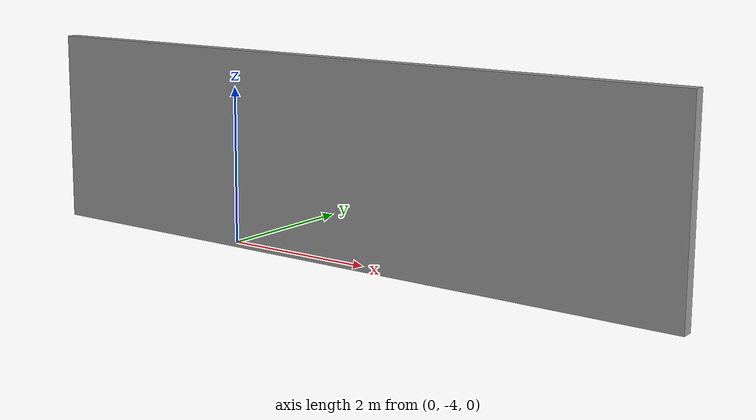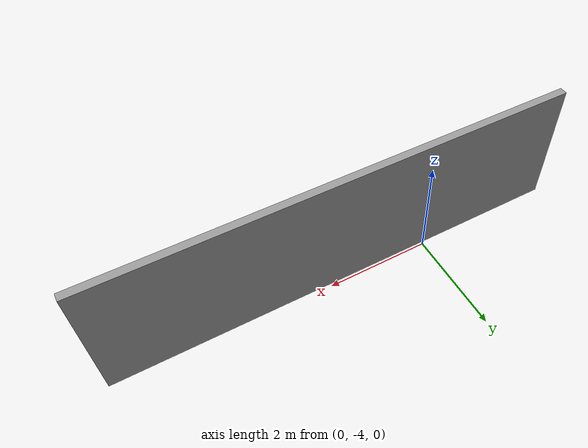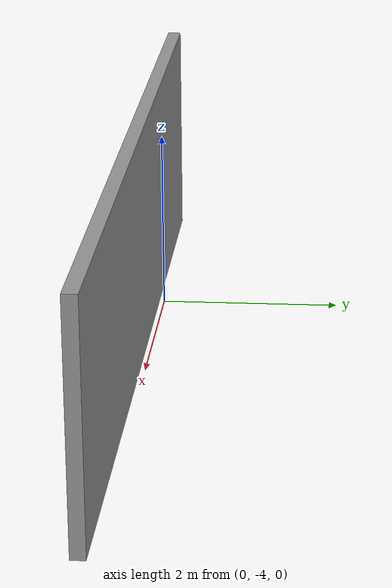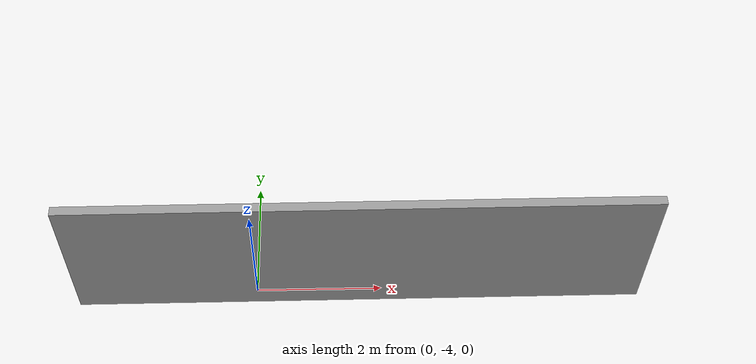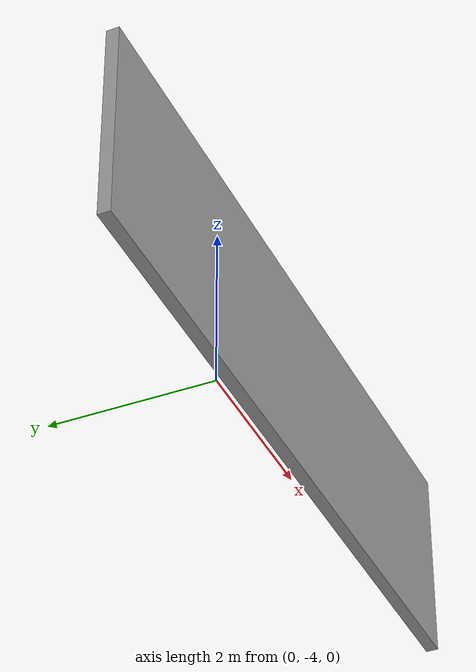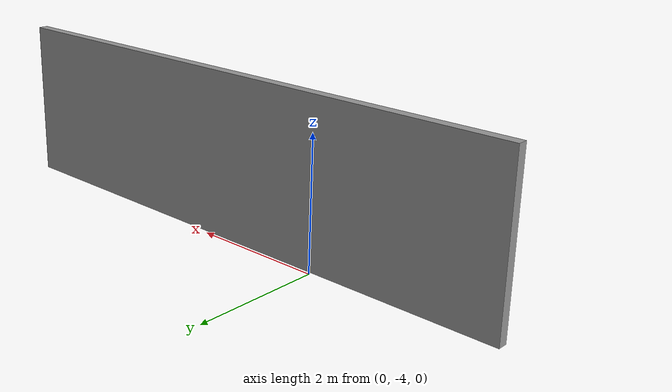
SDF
<?xml version='1.0'?>
<sdf version='1.6'>
  <model name='t1'>
    <pose frame=''>1.645 -4.13 0 0 -0 0</pose>
    <link name='Wall_7'>
      <collision name='Wall_7_Collision'>
        <geometry>
          <box>
            <size>9 0.15 2.5</size>
          </box>
        </geometry>
        <pose frame=''>0 0 1.25 0 -0 0</pose>
      </collision>
      <visual name='Wall_7_Visual'>
        <pose frame=''>0 0 1.25 0 -0 0</pose>
        <geometry>
          <box>
            <size>9 0.15 2.5</size>
          </box>
        </geometry>
        <material>
          <script>
            <uri>file://media/materials/scripts/gazebo.material</uri>
            <name>Gazebo/Grey</name>
          </script>
          <ambient>1 1 1 1</ambient>
        </material>
        <meta>
          <layer>0</layer>
        </meta>
      </visual>
      <pose frame=''>0 0 0 0 -0 0</pose>
    </link>
    <static>1</static>
  </model>
</sdf>
